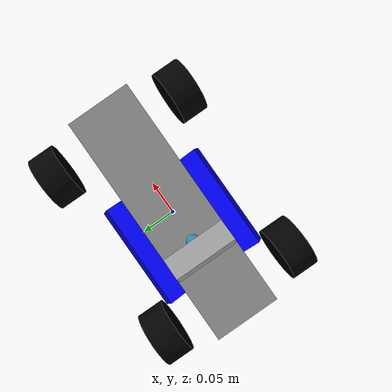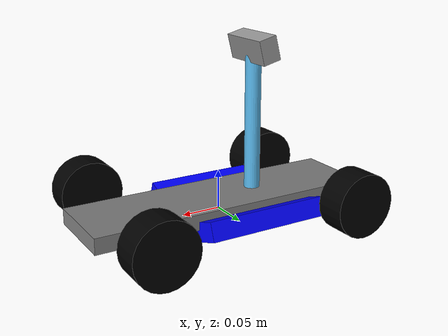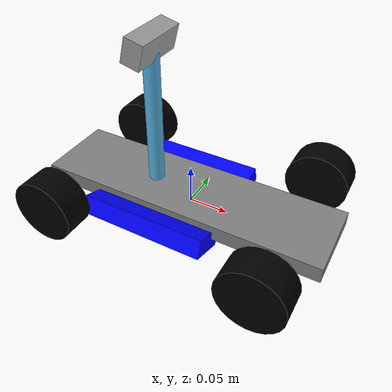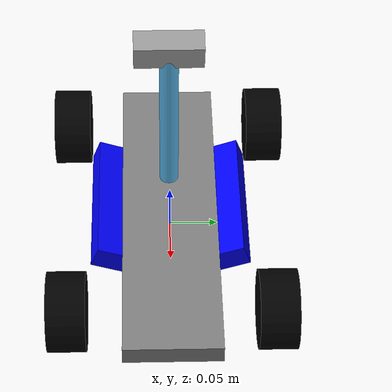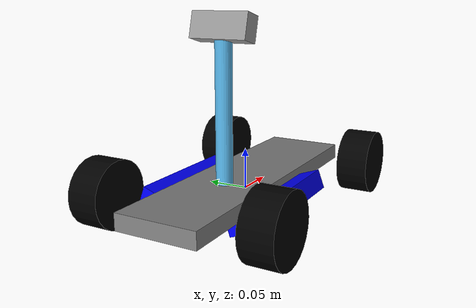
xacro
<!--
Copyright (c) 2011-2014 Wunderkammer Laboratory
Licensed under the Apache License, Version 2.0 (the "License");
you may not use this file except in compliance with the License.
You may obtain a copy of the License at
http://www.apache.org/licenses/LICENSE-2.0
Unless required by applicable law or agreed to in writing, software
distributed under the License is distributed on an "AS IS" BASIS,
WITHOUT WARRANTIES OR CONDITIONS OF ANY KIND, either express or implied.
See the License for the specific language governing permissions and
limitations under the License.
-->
<?xml version="1.0"?>

<robot name="colin_2" xmlns:xacro="http://www.ros.org/wiki/xacro">

  <!-- ****************************************** Constants ****************************************** -->
    <xacro:property name="pi" value="3.14159265359"/>

    <!-- Bumpper sensor Properties -->
    <xacro:property name="bumper_update_rate" value="30.0"/>

    <!-- Camera Properties -->
    <xacro:property name="cam_update_rate" value="30.0"/>
    <xacro:property name="clipping_near" value="0.02"/>
    <xacro:property name="clipping_far" value="100"/>

    <!-- Degree-to-radian conversions -->
    <xacro:property name="degrees_45" value="0.785398163"/>
    <xacro:property name="degrees_90" value="1.57079633"/>

    <!-- chassis_length is measured along the x axis, chassis_width
        along the y axis, and chassis_height along the z axis. -->
    <xacro:property name="chassis_length" value="0.370"/>
    <xacro:property name="chassis_width" value="0.10"/>
    <xacro:property name="chassis_height" value="0.02"/>
    <xacro:property name="chassis_mass" value="2.788"/>

    <!-- hitbox_length is measured along the x axis, hitbox_width
        along the y axis, and hitbox_height along the z axis. -->
    <xacro:property name="hitbox_length" value="0.370"/>
    <xacro:property name="hitbox_width" value="0.25"/>
    <xacro:property name="hitbox_height" value="0.01"/>

    <xacro:property name="battery_x_offset" value="0.055"/>
    <xacro:property name="battery_dist" value="0.065"/>
    <xacro:property name="battery_comp_depth" value="0.02"/>
    <xacro:property name="battery_comp_angle" value="0.34906585"/>
    <xacro:property name="battery_length" value="0.16"/>
    <xacro:property name="battery_width" value="0.047"/>
    <xacro:property name="battery_height" value="0.024"/>
    <xacro:property name="battery_mass" value="0.5025"/>

    <xacro:property name="hub_dia" value="0.062"/>
    <xacro:property name="tire_dia" value="0.081"/>
    <xacro:property name="tire_width" value="0.039"/>
    <xacro:property name="hex_hub_depth" value="-0.0005"/>
    <xacro:property name="wheel_mass" value="0.29"/>

    <xacro:property name="wheelbase" value="0.267"/>
    <xacro:property name="hex_hub_dist" value="0.25"/>     <!-- 0,265 or 0.241-->
    <xacro:property name="axle_length" value="0.02"/>
    <xacro:property name="wheel_travel" value="0.001"/>
    <xacro:property name="shock_z_offset" value="-0.016"/>

    <xacro:property name="shock_eff_limit" value="12.5106"/>
    <xacro:property name="shock_vel_limit" value="1000"/>

    <xacro:property name="axle_eff_limit" value="5.12766"/>
    <xacro:property name="axle_vel_limit" value="244.8696"/>

    <!-- These constants are used to simulate a Traxxas 2056 servo operated at
        6 V. servo_stall_torque is measured in N m. servo_no_load_speed is
        measured in rad/s. -->
    <xacro:property name="servo_stall_torque" value="0.5649"/>
    <xacro:property name="servo_no_load_speed" value="4.553"/>

    <xacro:property name="camera_length" value="0.071"/>
    <xacro:property name="camera_height" value="0.031"/>
    <xacro:property name="camera_width" value="0.024"/>
    <xacro:property name="camera_x" value="-0.05"/>
    <xacro:property name="camera_y" value="0.0"/>
    <xacro:property name="camera_z" value="0.2"/>

    <material name="battery_mat">
        <color rgba="0 0 1 1"/>
    </material>
    <material name="chassis_mat">
        <color rgba="0.5 0.5 0.5 1"/>
    </material>
    <material name="tire_mat">
        <color rgba="0 0 0 1"/>
    </material>
     <material name="bb_mat">
        <color rgba="0 1 0 0.1"/>
    </material>

  <!-- Null inertial element. This is needed to make the model work with
       Gazebo. -->
  <xacro:macro name="null_inertial">
    <inertial>
      <mass value="0.001"/>
      <inertia ixx="0.001" ixy="0" ixz="0" iyy="0.001" iyz="0" izz="0.001"/>
    </inertial>
  </xacro:macro>

  <!-- Inertia of a solid cuboid. Width is measured along the x axis, depth
       along the y axis, and height along the z axis. -->
  <xacro:macro name="solid_cuboid_inertial"
               params="width depth height mass *origin">
    <inertial>
      <xacro:insert_block name="origin"/>
      <mass value="${mass}"/>
      <inertia ixx="${mass * (depth * depth + height * height) / 12}"
               ixy="0" ixz="0"
               iyy="${mass * (width * width + height * height) / 12}"
               iyz="0"
               izz="${mass * (width * width + depth * depth) / 12}"/>
    </inertial>
  </xacro:macro>

  <xacro:macro name="thick_walled_tube_inertial"
               params="inner_rad outer_rad height mass">
    <inertial>
      <mass value="${mass}"/>
      <inertia ixx="${(1 / 12) * mass * (3 * (inner_rad * inner_rad +
                    outer_rad * outer_rad) + height * height)}"
               ixy="0" ixz="0"
               iyy="${(1 / 12) * mass * (3 * (inner_rad * inner_rad +
                    outer_rad * outer_rad) + height * height)}"
               iyz="0"
               izz="${mass * (inner_rad * inner_rad +
                    outer_rad * outer_rad) / 2}"/>
    </inertial>
  </xacro:macro>

  <!-- Battery -->
  <xacro:macro name="battery" params="prefix reflect">
    <joint name="chassis_to_${prefix}_battery" type="fixed">
      <parent link="chassis"/>
      <child link="${prefix}_battery_offset"/>
      <origin xyz="${battery_x_offset - battery_length / 2}
                   ${reflect * battery_dist / 2}
                   0"
              rpy="${reflect * battery_comp_angle} 0 0"/>
    </joint>

    <link name="${prefix}_battery_offset">
      <xacro:null_inertial/>
    </link>

    <joint name="offset_to_${prefix}_battery" type="fixed">
      <parent link="${prefix}_battery_offset"/>
      <child link="${prefix}_battery"/>
      <origin xyz="0
                   ${reflect * battery_width / 2}
                   ${(battery_height / 2) - battery_comp_depth}"/>
    </joint>

    <link name="${prefix}_battery">
      <visual>
        <geometry>
          <box size="${battery_length} ${battery_width} ${battery_height}"/>
        </geometry>
        <material name="battery_mat"/>
      </visual>

      <collision>
        <geometry>
          <box size="${battery_length} ${battery_width} ${battery_height}"/>
        </geometry>
      </collision>

      <xacro:solid_cuboid_inertial
         width="${battery_length}" depth="${battery_width}"
         height="${battery_height}" mass="${battery_mass}">
        <origin/>
      </xacro:solid_cuboid_inertial>
    </link>

    <gazebo reference="${prefix}_battery">
      <material>Gazebo/Blue</material>
    </gazebo>
  </xacro:macro>

  <!-- Shock absorber -->
  <xacro:macro name="shock"
               params="lr_prefix fr_prefix lr_reflect fr_reflect child">
    <joint name="${lr_prefix}_${fr_prefix}_shock" type="prismatic">
      <parent link="chassis"/>
      <child link="${child}"/>

      <origin xyz="${fr_reflect * wheelbase / 2}
                   ${lr_reflect * ((hex_hub_dist / 2) - axle_length)}
                   ${(wheel_travel / 2) - shock_z_offset}"/>
      <axis xyz="0 0 -1"/>
      <limit lower="${-wheel_travel / 2}" upper="${wheel_travel / 2}"
             effort="${shock_eff_limit}" velocity="${shock_vel_limit}"/>
    </joint>
    <transmission name="${lr_prefix}_${fr_prefix}_shock_trans">
      <type>transmission_interface/SimpleTransmission</type>
      <joint name="${lr_prefix}_${fr_prefix}_shock">
        <hardwareInterface>EffortJointInterface</hardwareInterface>
      </joint>
      <actuator name="${lr_prefix}_${fr_prefix}_shock_act">
        <!-- This hardwareInterface element exists for compatibility
             with ROS Hydro. -->
        <hardwareInterface>EffortJointInterface</hardwareInterface>
        <mechanicalReduction>1</mechanicalReduction>
      </actuator>
    </transmission>
  </xacro:macro>

  <!-- The "wheel" macro defines an axle carrier, axle, and wheel. -->
  <xacro:macro name="wheel" params="lr_prefix fr_prefix lr_reflect">
    <link name="${lr_prefix}_${fr_prefix}_axle_carrier">
      <xacro:null_inertial/>
    </link>

    <!-- The left and right axles have the same axis so that identical
         rotation values cause the wheels to rotate in the same direction. -->
    <joint name="${lr_prefix}_${fr_prefix}_axle" type="continuous">
      <parent link="${lr_prefix}_${fr_prefix}_axle_carrier"/>
      <child link="${lr_prefix}_${fr_prefix}_wheel"/>
      <origin rpy="${degrees_90} 0 0"/>
      <axis xyz="0 0 -1"/>
      <limit effort="${axle_eff_limit}" velocity="${axle_vel_limit}"/>
    </joint>
    <transmission name="${lr_prefix}_${fr_prefix}_axle_trans">
      <type>transmission_interface/SimpleTransmission</type>
      <joint name="${lr_prefix}_${fr_prefix}_axle">
        <hardwareInterface>EffortJointInterface</hardwareInterface>
      </joint>
      <actuator name="${lr_prefix}_${fr_prefix}_axle_act">
        <!-- This hardwareInterface element exists for compatibility
             with ROS Hydro. -->
        <hardwareInterface>EffortJointInterface</hardwareInterface>
        <mechanicalReduction>1</mechanicalReduction>
      </actuator>
    </transmission>

    <link name="${lr_prefix}_${fr_prefix}_wheel">
      <visual>
        <origin xyz="0
                     ${lr_reflect * (axle_length - (tire_width /
                     2 - hex_hub_depth))}
                     0"/>
        <geometry>
          <cylinder radius="${tire_dia / 2}" length="${tire_width}"/>
        </geometry>
        <material name="tire_mat"/>
      </visual>

      <collision>
        <origin xyz="0
                     ${lr_reflect * (axle_length - (tire_width /
                     2 - hex_hub_depth))}
                     0"/>
        <geometry>
          <cylinder radius="${tire_dia / 2}" length="${tire_width}"/>
        </geometry>
      </collision>

      <xacro:thick_walled_tube_inertial
          inner_rad="${hub_dia / 2}" outer_rad="${tire_dia / 2}"
          height="${tire_width}" mass="${wheel_mass}"/>
    </link>

    <gazebo reference="${lr_prefix}_${fr_prefix}_wheel">
      <material>Gazebo/FlatBlack</material>
    </gazebo>
  </xacro:macro>

  <!-- Front wheel -->
  <xacro:macro name="front_wheel"
               params="lr_prefix fr_prefix lr_reflect fr_reflect">
    <xacro:shock lr_prefix="${lr_prefix}" fr_prefix="${fr_prefix}"
                 lr_reflect="${lr_reflect}" fr_reflect="${fr_reflect}"
                 child="${lr_prefix}_steering_link"/>

    <link name="${lr_prefix}_steering_link">
      <xacro:null_inertial/>
    </link>

    <joint name="${lr_prefix}_steering_joint" type="revolute">
      <parent link="${lr_prefix}_steering_link"/>
      <child link="${lr_prefix}_${fr_prefix}_axle_carrier"/>
      <axis xyz="0 0 1"/>
      <limit lower="${-degrees_45}" upper="${degrees_45}"
             effort="${servo_stall_torque}" velocity="${servo_no_load_speed}"/>
    </joint>
    <transmission name="${lr_prefix}_steering_trans">
      <type>transmission_interface/SimpleTransmission</type>
      <joint name="${lr_prefix}_steering_joint">
        <hardwareInterface>EffortJointInterface</hardwareInterface>
      </joint>
      <actuator name="${lr_prefix}_steering_act">
        <!-- This hardwareInterface element exists for compatibility
             with ROS Hydro. -->
        <hardwareInterface>EffortJointInterface</hardwareInterface>
        <mechanicalReduction>1</mechanicalReduction>
      </actuator>
    </transmission>

    <xacro:wheel lr_prefix="${lr_prefix}" fr_prefix="${fr_prefix}"
                 lr_reflect="${lr_reflect}"/>
  </xacro:macro>

  <!-- Rear wheel -->
  <xacro:macro name="rear_wheel"
               params="lr_prefix fr_prefix lr_reflect fr_reflect">
    <xacro:shock lr_prefix="${lr_prefix}" fr_prefix="${fr_prefix}"
                 lr_reflect="${lr_reflect}" fr_reflect="${fr_reflect}"
                 child="${lr_prefix}_${fr_prefix}_axle_carrier"/>
    <xacro:wheel lr_prefix="${lr_prefix}" fr_prefix="${fr_prefix}"
                 lr_reflect="${lr_reflect}"/>
  </xacro:macro>

  <!-- base_link must have geometry so that its axes can be displayed in
       rviz. -->
  <link name="base_link">
    <visual>
      <geometry>
        <box size="0.01 0.01 0.01"/>
      </geometry>
      <material name="chassis_mat"/>
    </visual>
  </link>
  <gazebo reference="base_link">
    <material>Gazebo/Grey</material>
  </gazebo>

  <!-- Chassis -->
  <link name="chassis">
    <visual>
      <origin xyz="0 0 ${chassis_height/2}"/>
      <geometry>
        <box size="${chassis_length} ${chassis_width} ${chassis_height}"/>
      </geometry>
      <material name="chassis_mat"/>
    </visual>

    <collision>
      <origin xyz="0 0 ${chassis_height/2}"/>
      <geometry>
        <box size="${chassis_length} ${chassis_width} ${chassis_height}"/>
      </geometry>
    </collision>

    <xacro:solid_cuboid_inertial
        width="${chassis_length}" depth="${chassis_width}"
        height="${chassis_height}" mass="${chassis_mass}">
      <origin xyz="0 0 ${chassis_height/2}"/>
    </xacro:solid_cuboid_inertial>
  </link>
  <gazebo reference="chassis">
    <material>Gazebo/Black</material>
  </gazebo>

  <joint name="base_link_to_chassis" type="fixed">
    <parent link="base_link"/>
    <child link="chassis"/>
  </joint>

  <!-- Batteries -->
  <xacro:battery prefix="left" reflect="1"/>
  <xacro:battery prefix="right" reflect="-1"/>

  <!-- Wheels -->
  <xacro:front_wheel lr_prefix="left" fr_prefix="front"
                     lr_reflect="1" fr_reflect="1"/>
  <xacro:front_wheel lr_prefix="right" fr_prefix="front"
                     lr_reflect="-1" fr_reflect="1"/>
  <xacro:rear_wheel lr_prefix="left" fr_prefix="rear"
                    lr_reflect="1" fr_reflect="-1"/>
  <xacro:rear_wheel lr_prefix="right" fr_prefix="rear"
                    lr_reflect="-1" fr_reflect="-1"/>

  <gazebo>
    <plugin name="gazebo_ros_control" filename="libgazebo_ros_control.so"/>
  </gazebo>

<!-- ****************************************** Camera ****************************************** -->
    <link name="camera_link">
        <visual>
            <origin xyz="0 0 0"
                    rpy="0 0 0"/>

            <geometry>
                <box size="${camera_width} ${camera_length} ${camera_height}"/>
            </geometry>
        </visual>

        <collision>
            <origin xyz="0 0 0"
                    rpy="0 0 0"/>
            <geometry>
                <box size="${camera_width} ${camera_length} ${camera_height}"/>
            </geometry>
        </collision>

        <inertial>
            <mass value="1e-5" />
            <origin xyz="0 0 0"
                    rpy="0 0 0"/>
            <inertia ixx="1e-6" ixy="0" ixz="0" iyy="1e-6" iyz="0" izz="1e-6" />
        </inertial>
    </link>

    <gazebo reference="camera_link">
        <material>Gazebo/Grey</material>
    </gazebo>

    <joint name="base_link_to_camera" type="fixed">
        <!-- origin moves the reference frame of the child -->
        <origin xyz="${camera_x} ${camera_y} ${camera_z}"
                rpy="0 0.25 0"/>
        <parent link="base_link"/>
        <child link="camera_link"/>
    </joint>

    <!-- Logitech C270 -->
    <gazebo reference="camera_link">
        <sensor type="camera" name="camera1">
        <update_rate>${cam_update_rate}</update_rate>
        <camera name="head">
            <horizontal_fov>1,0472</horizontal_fov>
            <image>
            <width>1280</width>
            <height>960</height>
            <format>R8G8B8</format>
            </image>
            <clip>
            <near>${clipping_near}</near>
            <far>${clipping_far}</far>
            </clip>
            <noise>
            <type>gaussian</type>
            <!-- Noise is sampled independently per pixel on each frame.
                That pixel's noise value is added to each of its color
                channels, which at that point lie in the range [0,1]. -->
            <mean>0.0</mean>
            </noise>
        </camera>
        <plugin name="camera_controller" filename="libgazebo_ros_camera.so">
            <alwaysOn>true</alwaysOn>
            <updateRate>0.0</updateRate>
            <cameraName>camera</cameraName>
            <imageTopicName>image_raw</imageTopicName>
            <cameraInfoTopicName>camera_info</cameraInfoTopicName>
            <frameName>camera_link</frameName>
            <hackBaseline>0.07</hackBaseline>
            <distortionK1>0.0</distortionK1>
            <distortionK2>0.0</distortionK2>
            <distortionK3>0.0</distortionK3>
            <distortionT1>0.0</distortionT1>
            <distortionT2>0.0</distortionT2>
        </plugin>
        </sensor>
    </gazebo>

<!-- ****************************************** Camera holder ****************************************** -->

    <link name="camera_rod">
        <visual>
            <origin xyz="0 0 0"
                    rpy="0 0 0"/>

            <geometry>
                <cylinder length="${camera_z}" radius="0.01"/>
            </geometry>
        </visual>

    </link>

    <gazebo reference="camera_link">
        <material>Gazebo/Grey</material>
    </gazebo>

    <joint name="base_link_to_rod" type="fixed">
        <!-- origin moves the reference frame of the child -->
        <origin xyz="${camera_x} ${camera_y} 0.1"
                rpy="0 0 0"/>
        <parent link="base_link"/>
        <child link="camera_rod"/>
    </joint>

<!-- ****************************************** Bumper sensor ****************************************** -->
    <link name="bumper_link">

        <collision>
            <origin xyz="0 0 0"
                    rpy="0 0 0"/>
            <geometry>
                <box size="${hitbox_length} ${hitbox_width} ${hitbox_height}"/>
            </geometry>
            <contact_coefficients kd="1.0" kp="1000.0" mu="0"/>
        </collision>

        <inertial>
            <mass value="1e-5" />
            <origin xyz="0 0 0"
                    rpy="0 0 0"/>
            <inertia ixx="1e-6" ixy="0" ixz="0" iyy="1e-6" iyz="0" izz="1e-6" />
        </inertial>
    </link>

    <joint name="base_link_to_bumper" type="fixed">
        <!-- origin moves the reference frame of the child -->
        <origin xyz="0 0 0"
                rpy="0 0 0"/>
        <parent link="base_link"/>
        <child link="bumper_link"/>
    </joint>

    <gazebo reference="bumper_link">
        <sensor name="bumper_sensor" type="contact">
            <always_on>true</always_on>
            <update_rate>${bumper_update_rate}</update_rate>
            <contact>
                <collision>base_link_fixed_joint_lump__bumper_link_collision</collision>
            </contact>
            <plugin name="bumper_link" filename="libgazebo_ros_bumper.so">
            <bumperTopicName>bumper_sensor</bumperTopicName>
            <frameName>bumper_link</frameName>
            </plugin>
        </sensor>
    </gazebo>

</robot>
